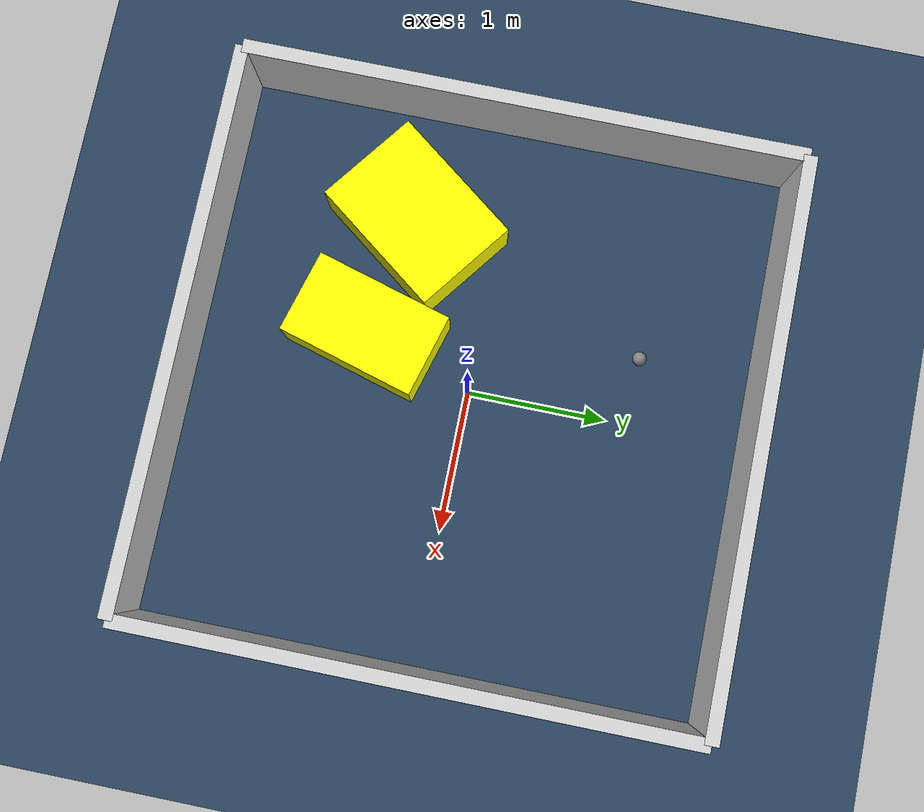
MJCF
<?xml version="1.0" ?>
<mujoco model="generated_environment">
  <option timestep="0.01" integrator="RK4" cone="elliptic"/>
  <default>
    <geom density="1"/>
  </default>
  <asset>
    <texture builtin="gradient" height="3072" rgb1="0.3 0.5 0.7" rgb2="0 0 0" type="skybox" width="512"/>
    <texture builtin="checker" height="300" mark="edge" markrgb="0.8 0.8 0.8" name="groundplane" rgb1="0.2 0.3 0.4" rgb2="0.1 0.2 0.3" type="2d" width="300"/>
    <material name="groundplane" reflectance="0.2" texrepeat="5 5" texture="groundplane" texuniform="true"/>
    <material name="robot" rgba="0.0 1.0 0.0 1"/>
  </asset>
  <worldbody>
    <light dir="0 0 -1" directional="true" pos="0 0 1.5"/>
    <geom condim="4" friction="1.0 0.005 0.001" material="groundplane" name="floor" size="0 0 0.05" type="plane"/>
    <body name="walls">
      <geom name="wall_1" condim="4" pos="-2.0 0.0 0.3" rgba="0.800000011920929 0.800000011920929 0.800000011920929 1.0" size="0.05 2.0 0.3" type="box"/>
      <geom name="wall_2" condim="4" pos="2.0 0.0 0.3" rgba="0.800000011920929 0.800000011920929 0.800000011920929 1.0" size="0.05 2.0 0.3" type="box"/>
      <geom name="wall_3" condim="4" pos="0.0 -2.0 0.3" rgba="0.800000011920929 0.800000011920929 0.800000011920929 1.0" size="2.0 0.05 0.3" type="box"/>
      <geom name="wall_4" condim="4" pos="0.0 2.0 0.3" rgba="0.800000011920929 0.800000011920929 0.800000011920929 1.0" size="2.0 0.05 0.3" type="box"/>
    </body>
    <body name="robot">
      <joint name="joint_x" type="slide" pos="0 0 0" axis="1 0 0"/>
      <joint name="joint_y" type="slide" pos="0 0 0" axis="0 1 0"/>
      <geom name="robot" type="sphere" pos="-0.45338305505575294 1.1433819550711335 0.2" size="0.05" mass="5." friction="1.0 0.005 0.0001" condim="4"/>
      <site name="sensor_ball"/>
    </body>
    <body name="obstacle_1_movable">
      <geom name="obstacle_1_movable" condim="4" pos="-0.2853555707618969 -0.7826560769781676 0.2" euler="0 0 344.10518630629537" friction="1.0 0.005 0.001" rgba="1 1 0 1" size="0.30317547574743314 0.5028261164082668 0.2" type="box" mass="0.1"/>
      <joint type="free"/>
    </body>
    <body name="obstacle_2_movable">
      <geom name="obstacle_2_movable" condim="4" pos="-1.1343107355691737 -0.5947902847090589 0.2" euler="0 0 143.06819684508312" friction="1.0 0.005 0.001" rgba="1 1 0 1" size="0.39131922014592363 0.5290072937732716 0.2" type="box" mass="0.1"/>
      <joint type="free"/>
    </body>
  </worldbody>
  <actuator>
    <motor name="actuator_x" joint="joint_x" gear="1" ctrlrange="-1 1"/>
    <motor name="actuator_y" joint="joint_y" gear="1" ctrlrange="-1 1"/>
  </actuator>
</mujoco>
